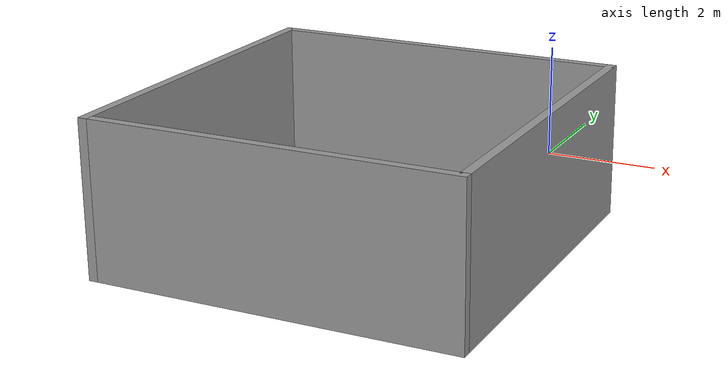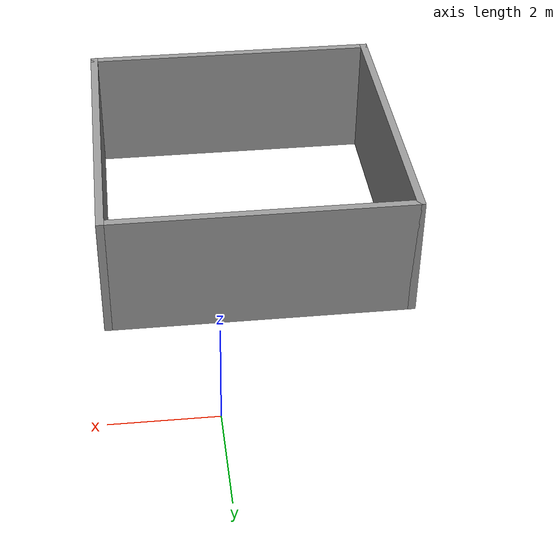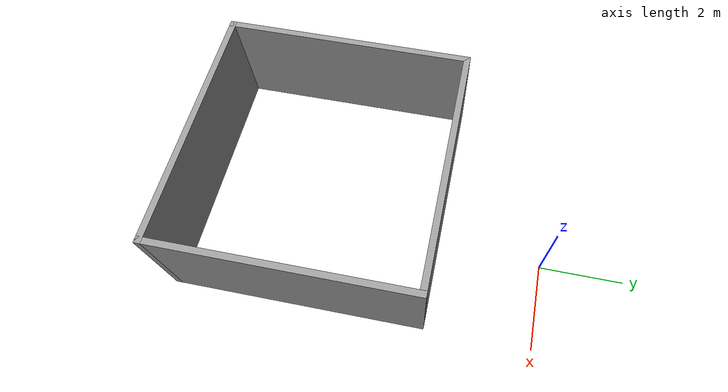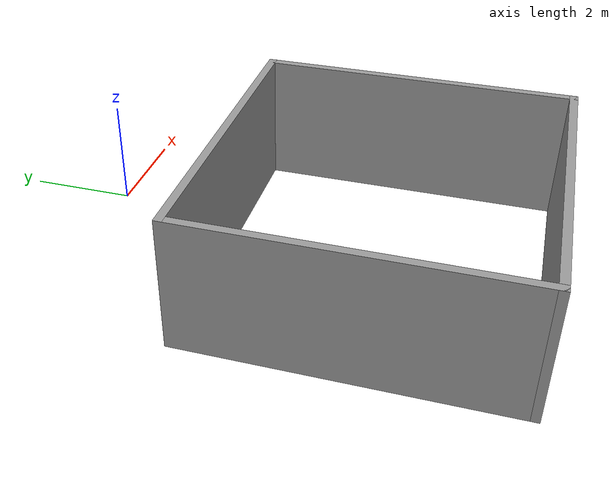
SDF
<?xml version='1.0'?>
<sdf version='1.7'>
  <model name='simple'>
    <pose>-1.005 -4.2425 0 0 -0 0</pose>
    <link name='Wall_11'>
      <collision name='Wall_11_Collision'>
        <geometry>
          <box>
            <size>6 0.15 2.5</size>
          </box>
        </geometry>
        <pose>0 0 1.25 0 -0 0</pose>
      </collision>
      <visual name='Wall_11_Visual'>
        <pose>0 0 1.25 0 -0 0</pose>
        <geometry>
          <box>
            <size>6 0.15 2.5</size>
          </box>
        </geometry>
        <material>
          <script>
            <uri>file://media/materials/scripts/gazebo.material</uri>
            <name>Gazebo/Grey</name>
          </script>
          <ambient>1 1 1 1</ambient>
        </material>
        <meta>
          <layer>0</layer>
        </meta>
      </visual>
      <pose>0 1.6825 0 0 -0 0</pose>
    </link>
    <link name='Wall_12'>
      <collision name='Wall_12_Collision'>
        <geometry>
          <box>
            <size>6 0.15 2.5</size>
          </box>
        </geometry>
        <pose>0 0 1.25 0 -0 0</pose>
      </collision>
      <visual name='Wall_12_Visual'>
        <pose>0 0 1.25 0 -0 0</pose>
        <geometry>
          <box>
            <size>6 0.15 2.5</size>
          </box>
        </geometry>
        <material>
          <script>
            <uri>file://media/materials/scripts/gazebo.material</uri>
            <name>Gazebo/Grey</name>
          </script>
          <ambient>1 1 1 1</ambient>
        </material>
        <meta>
          <layer>0</layer>
        </meta>
      </visual>
      <pose>2.925 -1.2425 0 0 -0 -1.5708</pose>
    </link>
    <link name='Wall_13'>
      <collision name='Wall_13_Collision'>
        <geometry>
          <box>
            <size>6 0.15 2.5</size>
          </box>
        </geometry>
        <pose>0 0 1.25 0 -0 0</pose>
      </collision>
      <visual name='Wall_13_Visual'>
        <pose>0 0 1.25 0 -0 0</pose>
        <geometry>
          <box>
            <size>6 0.15 2.5</size>
          </box>
        </geometry>
        <material>
          <script>
            <uri>file://media/materials/scripts/gazebo.material</uri>
            <name>Gazebo/Grey</name>
          </script>
          <ambient>1 1 1 1</ambient>
        </material>
        <meta>
          <layer>0</layer>
        </meta>
      </visual>
      <pose>0 -4.1675 0 0 -0 3.14159</pose>
    </link>
    <link name='Wall_14'>
      <collision name='Wall_14_Collision'>
        <geometry>
          <box>
            <size>6 0.15 2.5</size>
          </box>
        </geometry>
        <pose>0 0 1.25 0 -0 0</pose>
      </collision>
      <visual name='Wall_14_Visual'>
        <pose>0 0 1.25 0 -0 0</pose>
        <geometry>
          <box>
            <size>6 0.15 2.5</size>
          </box>
        </geometry>
        <material>
          <script>
            <uri>file://media/materials/scripts/gazebo.material</uri>
            <name>Gazebo/Grey</name>
          </script>
          <ambient>1 1 1 1</ambient>
        </material>
        <meta>
          <layer>0</layer>
        </meta>
      </visual>
      <pose>-2.925 -1.2425 0 0 -0 1.5708</pose>
    </link>
    <static>1</static>
  </model>
</sdf>
